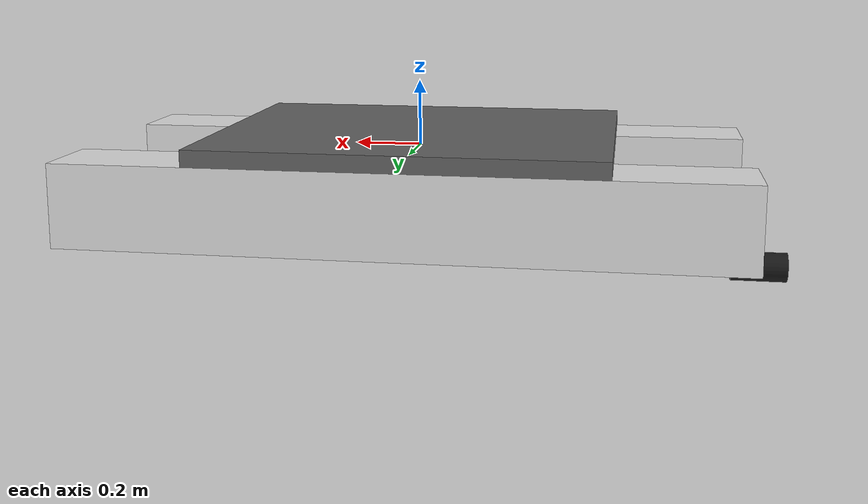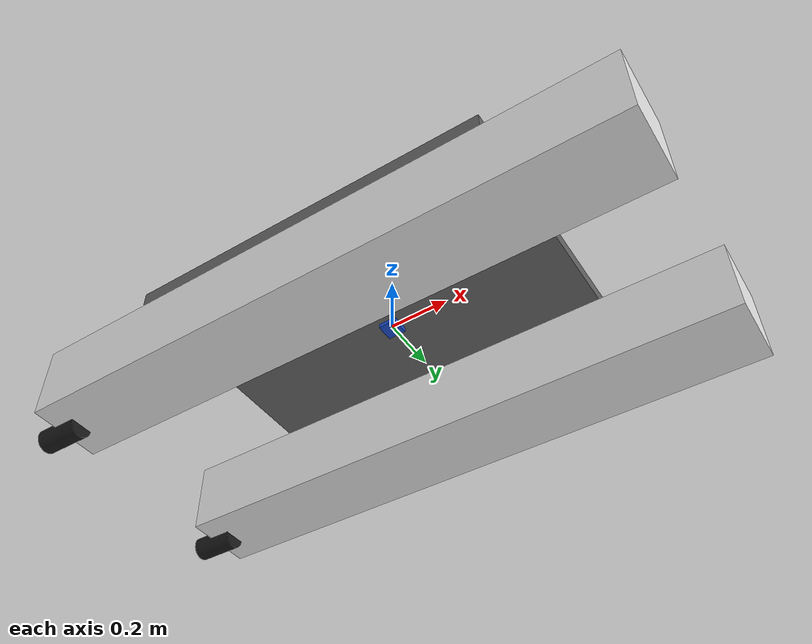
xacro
<?xml version="1.0"?>
<robot name="pinv" xmlns:xacro="http://ros.org/wiki/xacro">

  <!-- Casco -->
  <xacro:property name="hull_length" value="2.0"/>
  <xacro:property name="hull_width" value="0.25"/>
  <xacro:property name="hull_height" value="0.25"/>
  <xacro:property name="beam" value="1.0"/>        <!-- ancho total -->
  <xacro:property name="deck_height" value="0.05"/>

  <!-- Motores: distancia entre ejes = WHEEL_SEPARATION del firmware. MEDIR -->
  <xacro:property name="motor_separation" value="0.75"/>
  <xacro:property name="motor_x" value="${-hull_length / 2}"/>

  <!-- Sensores respecto de base_link [m]. MEDIR -->
  <xacro:property name="imu_x" value="0.0"/>
  <xacro:property name="imu_y" value="0.0"/>
  <xacro:property name="imu_z" value="0.0"/>
  <xacro:property name="gps_x" value="0.0"/>
  <xacro:property name="gps_y" value="0.0"/>
  <xacro:property name="gps_z" value="0.0"/>

  <material name="hull_white"><color rgba="0.9 0.9 0.9 1.0"/></material>
  <material name="deck_grey"><color rgba="0.4 0.4 0.4 1.0"/></material>
  <material name="sensor_blue"><color rgba="0.1 0.3 0.8 1.0"/></material>
  <material name="motor_black"><color rgba="0.1 0.1 0.1 1.0"/></material>

  <link name="base_link">
    <!-- Casco de babor -->
    <visual>
      <origin xyz="0 ${(beam - hull_width) / 2} ${-hull_height / 2}"/>
      <geometry><box size="${hull_length} ${hull_width} ${hull_height}"/></geometry>
      <material name="hull_white"/>
    </visual>
    <!-- Casco de estribor -->
    <visual>
      <origin xyz="0 ${-(beam - hull_width) / 2} ${-hull_height / 2}"/>
      <geometry><box size="${hull_length} ${hull_width} ${hull_height}"/></geometry>
      <material name="hull_white"/>
    </visual>
    <!-- Cubierta -->
    <visual>
      <origin xyz="0 0 ${deck_height / 2}"/>
      <geometry><box size="${hull_length * 0.6} ${beam} ${deck_height}"/></geometry>
      <material name="deck_grey"/>
    </visual>
  </link>

  <xacro:macro name="sensor" params="name x y z">
    <link name="${name}_link">
      <visual>
        <geometry><box size="0.06 0.06 0.03"/></geometry>
        <material name="sensor_blue"/>
      </visual>
    </link>
    <joint name="${name}_joint" type="fixed">
      <parent link="base_link"/>
      <child link="${name}_link"/>
      <origin xyz="${x} ${y} ${z}" rpy="0 0 0"/>
    </joint>
  </xacro:macro>

  <xacro:macro name="motor" params="side y">
    <link name="motor_${side}_link">
      <visual>
        <origin rpy="0 ${pi / 2} 0"/>
        <geometry><cylinder radius="0.04" length="0.15"/></geometry>
        <material name="motor_black"/>
      </visual>
    </link>
    <joint name="motor_${side}_joint" type="fixed">
      <parent link="base_link"/>
      <child link="motor_${side}_link"/>
      <origin xyz="${motor_x} ${y} ${-hull_height}" rpy="0 0 0"/>
    </joint>
  </xacro:macro>

  <xacro:sensor name="imu" x="${imu_x}" y="${imu_y}" z="${imu_z}"/>
  <xacro:sensor name="gps" x="${gps_x}" y="${gps_y}" z="${gps_z}"/>
  <xacro:motor side="left" y="${motor_separation / 2}"/>
  <xacro:motor side="right" y="${-motor_separation / 2}"/>

</robot>
